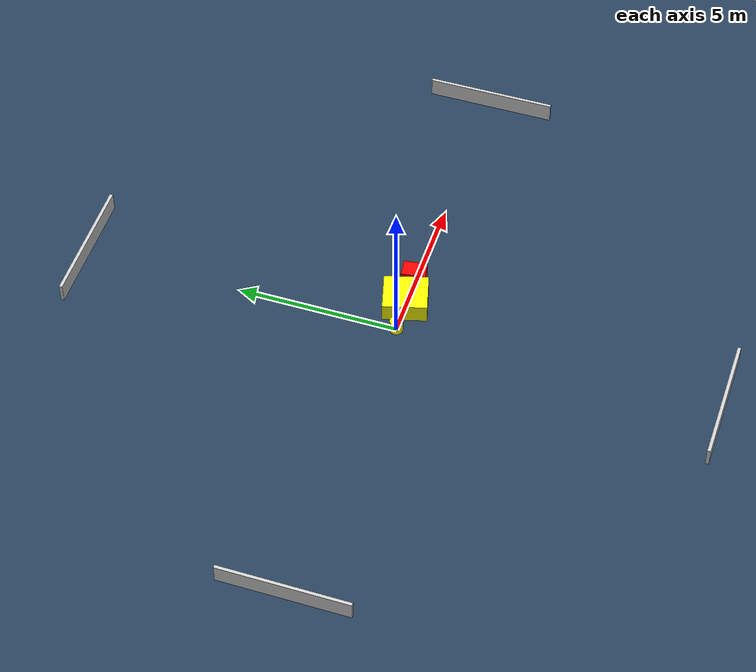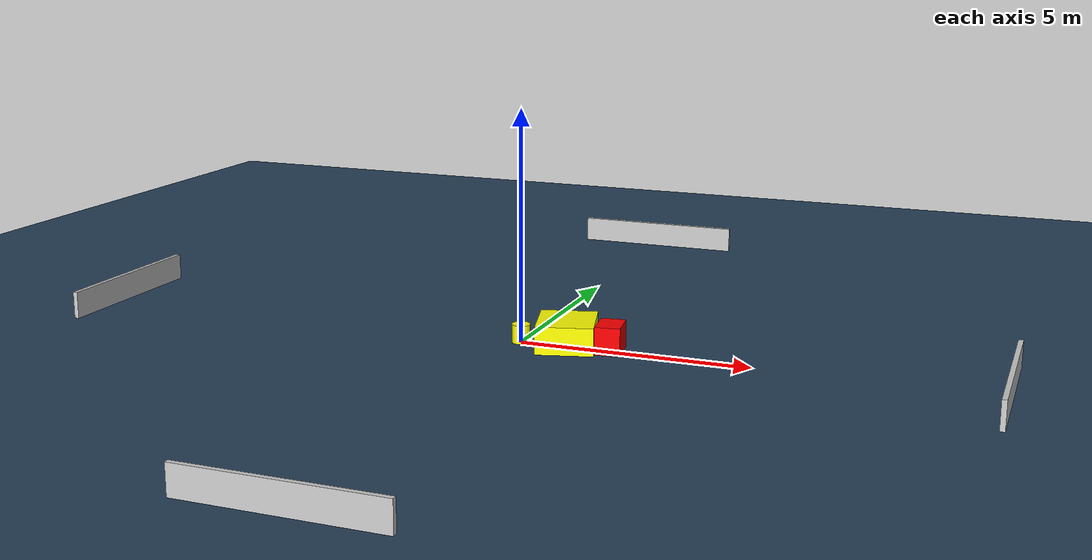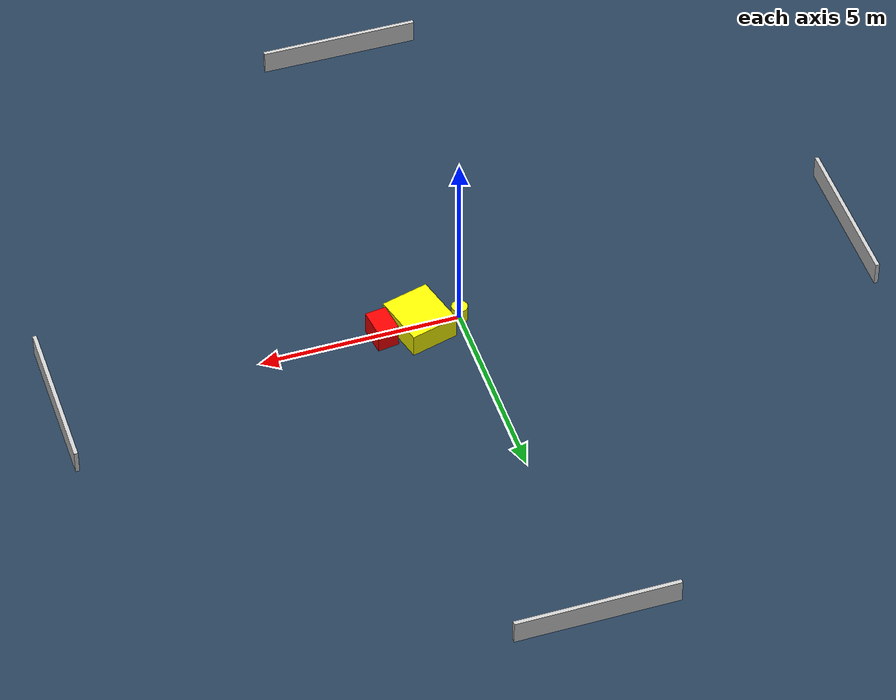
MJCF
<?xml version="1.0" ?>
<mujoco model="generated_environment">
  <option timestep="0.01" integrator="RK4" cone="elliptic"/>
  <default>
    <geom density="1"/>
  </default>
  <asset>
    <texture builtin="gradient" height="3072" name="skybox" rgb1="0.3 0.5 0.7" rgb2="0 0 0" type="skybox" width="512"/>
    <texture builtin="checker" height="300" name="groundplane" rgb1="0.2 0.3 0.4" rgb2="0.1 0.2 0.3" type="2d" width="300"/>
    <material name="groundplane" reflectance="0.2" texrepeat="5 5" texture="groundplane"/>
  </asset>
  <worldbody>
    <light dir="0 0 -1" directional="true" pos="0 0 1.5"/>
    <geom condim="3" friction="0.5 0.005 0.001" material="groundplane" name="floor" pos="0 0 0" size="0 0 0.05" type="plane"/>
    <body name="walls">
      <geom name="wall_1" condim="4" pos="-10.0 0.0 0.3" rgba="0.800000011920929 0.800000011920929 0.800000011920929 1.0" size="0.05 2.0 0.3" type="box"/>
      <geom name="wall_2" condim="4" pos="10.0 0.0 0.3" rgba="0.800000011920929 0.800000011920929 0.800000011920929 1.0" size="0.05 2.0 0.3" type="box"/>
      <geom name="wall_3" condim="4" pos="0.0 -10.0 0.3" rgba="0.800000011920929 0.800000011920929 0.800000011920929 1.0" size="2.0 0.05 0.3" type="box"/>
      <geom name="wall_4" condim="4" pos="0.0 10.0 0.3" rgba="0.800000011920929 0.800000011920929 0.800000011920929 1.0" size="2.0 0.05 0.3" type="box"/>
    </body>
    <body name="robot">
      <joint name="joint_x" type="slide" pos="0 0 0" axis="1 0 0"/>
      <joint name="joint_y" type="slide" pos="0 0 0" axis="0 1 0"/>
      <geom name="robot" type="cylinder" pos="0.0 0.0 0.2" size="0.2 0.2 0.0" mass="5.0" friction="1.0 0.005 0.0001" condim="4" rgba="1.0 1.0 0.0 1.0"/>
    </body>
    <body name="obstacle_1_movable">
      <geom name="obstacle_1_movable" condim="4" pos="1.0203474196880673 0.040844023733862894 0.3" euler="0 0 105.13537251425934" friction="0.0 0.005 0.001" rgba="1.0 1.0 0.0 1.0" size="0.6813347925077797 0.6109810303872648 0.3" type="box" mass="0.1"/>
      <joint type="free"/>
    </body>
    <body name="obstacle_2_static">
      <geom name="obstacle_2_static" condim="4" pos="1.9794879477622704 0.06354274174808244 0.3" euler="0 0 277.84874978502626" friction="0.0 0.005 0.001" rgba="1.0 0.0 0.0 1.0" size="0.3673730735560651 0.2675212510458108 0.3" type="box"/>
    </body>
  </worldbody>
  <actuator>
    <motor name="actuator_x" joint="joint_x" gear="1" ctrlrange="-1 1"/>
    <motor name="actuator_y" joint="joint_y" gear="1" ctrlrange="-1 1"/>
  </actuator>
</mujoco>
